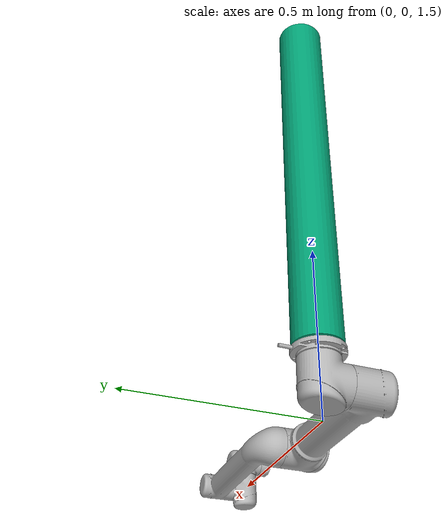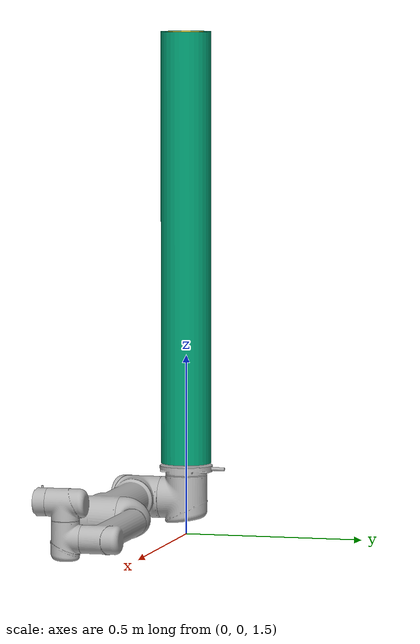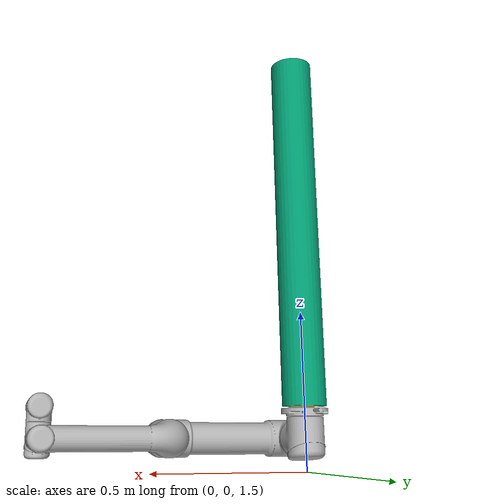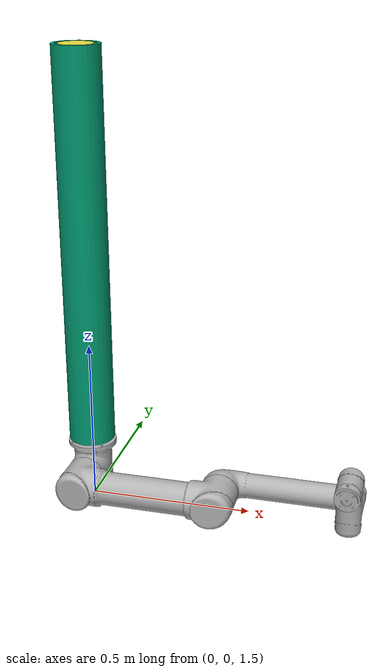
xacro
<?xml version="1.0"?>
<robot xmlns:xacro="http://wiki.ros.org/xacro"
       name="ur5" >

  <xacro:arg name="transmission_hw_interface" default="hardware_interface/PositionJointInterface"/>

  <!-- common stuff -->
  <xacro:include filename="$(find ur_description)/urdf/common.gazebo.xacro" />

  <!-- ur5 -->
  <xacro:include filename="$(find ur_with_cam_gazebo)/urdf/ur5_retractable.urdf.xacro" />

  <!-- arm -->
  <!--xacro:ur5_robot prefix="" joint_limited="false"
    transmission_hw_interface="$(arg transmission_hw_interface)"
  /-->
  <xacro:ur5_robot prefix="" joint_limited="true"
    shoulder_pan_lower_limit="${-pi}" shoulder_pan_upper_limit="${pi}"
    shoulder_lift_lower_limit="${-pi}" shoulder_lift_upper_limit="${pi}"
    elbow_joint_lower_limit="${-pi}" elbow_joint_upper_limit="${pi}"
    wrist_1_lower_limit="${-pi}" wrist_1_upper_limit="${pi}"
    wrist_2_lower_limit="${-pi}" wrist_2_upper_limit="${pi}"
    wrist_3_lower_limit="${-pi}" wrist_3_upper_limit="${pi}"
    transmission_hw_interface="$(arg transmission_hw_interface)"
  />

  <link name='world' />

  <joint name="world_joint" type="fixed">
    <parent link="world" />
    <child link = "base_link" />
    <origin xyz="0.0 0.0 2.9" rpy="${pi} 0.0 0.0" />
  </joint>

</robot>

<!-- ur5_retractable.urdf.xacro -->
<robot xmlns:xacro="http://wiki.ros.org/xacro">

  <xacro:include filename="$(find ur_with_cam_gazebo)/urdf/ur_retractable.transmission.xacro" />

  <xacro:include filename="$(find ur_with_cam_gazebo)/urdf/ur_retractable.gazebo.xacro" />

  <xacro:macro name="cylinder_inertial" params="radius length mass *origin">
    <inertial>
      <mass value="${mass}" />
      <xacro:insert_block name="origin" />
      <inertia ixx="${0.0833333 * mass * (3 * radius * radius + length * length)}" ixy="0.0" ixz="0.0"
        iyy="${0.0833333 * mass * (3 * radius * radius + length * length)}" iyz="0.0"
        izz="${0.5 * mass * radius * radius}" />
    </inertial>
  </xacro:macro>

  <xacro:macro name="ur5_robot" params="prefix joint_limited
    x_move_joint_lower_limit:=-1   x_move_joint_upper_limit:=1
    y_move_joint_lower_limit:=-1   y_move_joint_upper_limit:=1
    z_move_joint_lower_limit:=0   z_move_joint_upper_limit:=1
    shoulder_pan_lower_limit:=${-pi}    shoulder_pan_upper_limit:=${pi}
    shoulder_lift_lower_limit:=${-pi}    shoulder_lift_upper_limit:=${pi}
    elbow_joint_lower_limit:=${-pi}    elbow_joint_upper_limit:=${pi}
    wrist_1_lower_limit:=${-pi}    wrist_1_upper_limit:=${pi}
    wrist_2_lower_limit:=${-pi}    wrist_2_upper_limit:=${pi}
    wrist_3_lower_limit:=${-pi}    wrist_3_upper_limit:=${pi}
    transmission_hw_interface:=hardware_interface/PositionJointInterface
    safety_limits:=false safety_pos_margin:=0.15
    safety_k_position:=20">

    <!-- Inertia parameters -->
    <xacro:property name="base_mass" value="4.0" />  <!-- This mass might be incorrect -->
    <xacro:property name="shoulder_mass" value="3.7000" />
    <xacro:property name="upper_arm_mass" value="8.3930" />
    <xacro:property name="forearm_mass" value="2.2750" />
    <xacro:property name="wrist_1_mass" value="1.2190" />
    <xacro:property name="wrist_2_mass" value="1.2190" />
    <xacro:property name="wrist_3_mass" value="0.1879" />

    <xacro:property name="shoulder_cog" value="0.0 0.00193 -0.02561" />
    <xacro:property name="upper_arm_cog" value="0.0 -0.024201 0.2125" />
    <xacro:property name="forearm_cog" value="0.0 0.0265 0.11993" />
    <xacro:property name="wrist_1_cog" value="0.0 0.110949 0.01634" />
    <xacro:property name="wrist_2_cog" value="0.0 0.0018 0.11099" />
    <xacro:property name="wrist_3_cog" value="0.0 0.001159 0.0" />

    <!-- Kinematic model -->
    <!-- Properties from urcontrol.conf -->
    <xacro:property name="d1" value="0.089159" />
    <xacro:property name="a2" value="-0.42500" />
    <xacro:property name="a3" value="-0.39225" />
    <xacro:property name="d4" value="0.10915" />
    <xacro:property name="d5" value="0.09465" />
    <xacro:property name="d6" value="0.0823" />

    <!-- Arbitrary offsets for shoulder/elbow joints -->
    <xacro:property name="shoulder_offset" value="0.13585" />  <!-- measured from model -->
    <xacro:property name="elbow_offset" value="-0.1197" /> <!-- measured from model -->

    <!-- link lengths used in model -->
    <xacro:property name="shoulder_height" value="${d1}" />
    <xacro:property name="upper_arm_length" value="${-a2}" />
    <xacro:property name="forearm_length" value="${-a3}" />
    <xacro:property name="wrist_1_length" value="${d4 - elbow_offset - shoulder_offset}" />
    <xacro:property name="wrist_2_length" value="${d5}" />
    <xacro:property name="wrist_3_length" value="${d6}" />
    <!--property name="shoulder_height" value="0.089159" /-->
    <!--property name="shoulder_offset" value="0.13585" /-->  <!-- shoulder_offset - elbow_offset + wrist_1_length = 0.10915 -->
    <!--property name="upper_arm_length" value="0.42500" /-->
    <!--property name="elbow_offset" value="0.1197" /-->       <!-- CAD measured -->
    <!--property name="forearm_length" value="0.39225" /-->
    <!--property name="wrist_1_length" value="0.093" /-->     <!-- CAD measured -->
    <!--property name="wrist_2_length" value="0.09465" /-->   <!-- In CAD this distance is 0.930, but in the spec it is 0.09465 -->
    <!--property name="wrist_3_length" value="0.0823" /-->

    <xacro:property name="shoulder_radius" value="0.060" />   <!-- manually measured -->
    <xacro:property name="upper_arm_radius" value="0.054" />  <!-- manually measured -->
    <xacro:property name="elbow_radius" value="0.060" />      <!-- manually measured -->
    <xacro:property name="forearm_radius" value="0.040" />    <!-- manually measured -->
    <xacro:property name="wrist_radius" value="0.045" />      <!-- manually measured -->

    <link name="${prefix}base_link" >
        <xacro:cylinder_inertial radius="0.06" length="0.2" mass="1">
          <origin xyz="0.0 0.0 0.0" rpy="0 0 0" />
        </xacro:cylinder_inertial>
    </link>

    <joint name="${prefix}x_move_joint" type="prismatic">
        <parent link="${prefix}base_link" />
        <child link = "${prefix}move_x_link" />
        <origin xyz="0.0 0.0 0.6" rpy="0.0 0.0 0.0" />
        <axis xyz="1 0 0" />
        <limit lower="-1" upper="1" effort="1000.0" velocity="3.15"/>
        <dynamics damping="0.0" friction="0.0"/>
    </joint>

    <link name="${prefix}move_x_link" >
        <xacro:cylinder_inertial radius="0.06" length="0.2" mass="1">
          <origin xyz="0.0 0.0 0.0" rpy="0 0 0" />
        </xacro:cylinder_inertial>
    </link>

    <joint name="${prefix}y_move_joint" type="prismatic">
        <parent link="${prefix}move_x_link" />
        <child link = "${prefix}move_y_link" />
        <origin xyz="0.0 0.0 0.0" rpy="0.0 0.0 0.0" />
        <axis xyz="0 1 0" />
        <limit lower="-1" upper="1" effort="1000.0" velocity="3.15"/>
        <dynamics damping="0.0" friction="0.0"/>
    </joint>

    <link name="${prefix}move_y_link" >
        <visual>
          <geometry>
            <mesh filename="package://ur_with_cam_gazebo/meshes/retractable_base.dae" />
          </geometry>
        </visual>
        <xacro:cylinder_inertial radius="0.15" length="1.2" mass="1">
          <origin xyz="0.0 0.0 0.0" rpy="0 0 0" />
        </xacro:cylinder_inertial>
    </link>

    <joint name="${prefix}z_move_joint" type="prismatic">
        <parent link="${prefix}move_y_link" />
        <child link = "${prefix}move_z_link" />
        <origin xyz="0.0 0.0 0.0" rpy="0.0 0.0 0.0" />
        <axis xyz="0 0 1" />
        <limit lower="0" upper="1.2" effort="1000.0" velocity="3.15"/>
        <dynamics damping="0.0" friction="0.0"/>
    </joint>

    <link name="${prefix}move_z_link" >
        <visual name='visual'>
          <geometry>
            <cylinder radius="0.05" length="1.2" />
          </geometry>
        </visual>
        <xacro:cylinder_inertial radius="0.05" length="1.2" mass="1">
          <origin xyz="0.0 0.0 0.0" rpy="0 0 0" />
        </xacro:cylinder_inertial>
    </link>

    <joint name="${prefix}fix_arm_base_joint" type="fixed">
      <parent link="${prefix}move_z_link" />
      <child link = "${prefix}arm_base_link" />
      <origin xyz="0.0 0.0 0.61" rpy="0.0 0.0 0.0" />
    </joint>

    <link name="${prefix}arm_base_link" >
      <visual>
        <geometry>
          <mesh filename="package://ur_description/meshes/ur5/visual/base.dae" />
        </geometry>
        <material name="LightGrey">
          <color rgba="0.7 0.7 0.7 1.0"/>
        </material>
      </visual>
      <collision>
        <geometry>
          <mesh filename="package://ur_description/meshes/ur5/collision/base.stl" />
        </geometry>
      </collision>
      <xacro:cylinder_inertial radius="0.06" length="0.05" mass="${base_mass}">
        <origin xyz="0.0 0.0 0.0" rpy="0 0 0" />
      </xacro:cylinder_inertial>
    </link>

    <joint name="${prefix}shoulder_pan_joint" type="revolute">
      <parent link="${prefix}arm_base_link" />
      <child link = "${prefix}shoulder_link" />
      <origin xyz="0.0 0.0 ${shoulder_height}" rpy="0.0 0.0 0.0" />
      <axis xyz="0 0 1" />
      <xacro:unless value="${joint_limited}">
        <limit lower="${-2.0 * pi}" upper="${2.0 * pi}" effort="150.0" velocity="3.15"/>
        <xacro:if value="${safety_limits}">
          <safety_controller soft_lower_limit="${-2.0 * pi + safety_pos_margin}" soft_upper_limit="${2.0 * pi - safety_pos_margin}" k_position="${safety_k_position}" k_velocity="0.0"/>
        </xacro:if>
      </xacro:unless>
      <xacro:if value="${joint_limited}">
        <limit lower="${shoulder_pan_lower_limit}" upper="${shoulder_pan_upper_limit}" effort="150.0" velocity="3.15"/>
        <xacro:if value="${safety_limits}">
          <safety_controller soft_lower_limit="${shoulder_pan_lower_limit + safety_pos_margin}" soft_upper_limit="${shoulder_pan_upper_limit - safety_pos_margin}" k_position="${safety_k_position}" k_velocity="0.0"/>
        </xacro:if>
      </xacro:if>
      <dynamics damping="0.0" friction="0.0"/>
    </joint>

    <link name="${prefix}shoulder_link">
      <visual>
        <geometry>
          <mesh filename="package://ur_description/meshes/ur5/visual/shoulder.dae" />
        </geometry>
        <material name="LightGrey">
          <color rgba="0.7 0.7 0.7 1.0"/>
        </material>
      </visual>
      <collision>
        <geometry>
          <mesh filename="package://ur_description/meshes/ur5/collision/shoulder.stl" />
        </geometry>
      </collision>
      <xacro:cylinder_inertial radius="0.06" length="0.15" mass="${shoulder_mass}">
        <origin xyz="0.0 0.0 0.0" rpy="0 0 0" />
      </xacro:cylinder_inertial>
    </link>

    <joint name="${prefix}shoulder_lift_joint" type="revolute">
      <parent link="${prefix}shoulder_link" />
      <child link = "${prefix}upper_arm_link" />
      <origin xyz="0.0 ${shoulder_offset} 0.0" rpy="0.0 ${pi / 2.0} 0.0" />
      <axis xyz="0 1 0" />
      <xacro:unless value="${joint_limited}">
        <limit lower="${-2.0 * pi}" upper="${2.0 * pi}" effort="150.0" velocity="3.15"/>
        <xacro:if value="${safety_limits}">
          <safety_controller soft_lower_limit="${-2.0 * pi + safety_pos_margin}" soft_upper_limit="${2.0 * pi - safety_pos_margin}" k_position="${safety_k_position}" k_velocity="0.0"/>
        </xacro:if>
      </xacro:unless>
      <xacro:if value="${joint_limited}">
        <limit lower="${shoulder_lift_lower_limit}" upper="${shoulder_lift_upper_limit}" effort="150.0" velocity="3.15"/>
        <xacro:if value="${safety_limits}">
          <safety_controller soft_lower_limit="${shoulder_lift_lower_limit + safety_pos_margin}" soft_upper_limit="${shoulder_lift_upper_limit - safety_pos_margin}" k_position="${safety_k_position}" k_velocity="0.0"/>
        </xacro:if>
      </xacro:if>
      <dynamics damping="0.0" friction="0.0"/>
    </joint>

    <link name="${prefix}upper_arm_link">
      <visual>
        <geometry>
          <mesh filename="package://ur_description/meshes/ur5/visual/upperarm.dae" />
        </geometry>
        <material name="LightGrey">
          <color rgba="0.7 0.7 0.7 1.0"/>
        </material>
      </visual>
      <collision>
        <geometry>
          <mesh filename="package://ur_description/meshes/ur5/collision/upperarm.stl" />
        </geometry>
      </collision>
      <xacro:cylinder_inertial radius="0.06" length="0.56" mass="${upper_arm_mass}">
        <origin xyz="0.0 0.0 0.28" rpy="0 0 0" />
      </xacro:cylinder_inertial>
    </link>

    <joint name="${prefix}elbow_joint" type="revolute">
      <parent link="${prefix}upper_arm_link" />
      <child link = "${prefix}forearm_link" />
      <origin xyz="0.0 ${elbow_offset} ${upper_arm_length}" rpy="0.0 0.0 0.0" />
      <axis xyz="0 1 0" />
      <xacro:unless value="${joint_limited}">
        <limit lower="${-pi}" upper="${pi}" effort="150.0" velocity="3.15"/>
        <xacro:if value="${safety_limits}">
          <safety_controller soft_lower_limit="${-2.0 * pi + safety_pos_margin}" soft_upper_limit="${2.0 * pi - safety_pos_margin}" k_position="${safety_k_position}" k_velocity="0.0"/>
        </xacro:if>
      </xacro:unless>
      <xacro:if value="${joint_limited}">
        <limit lower="${elbow_joint_lower_limit}" upper="${elbow_joint_upper_limit}" effort="150.0" velocity="3.15"/>
        <xacro:if value="${safety_limits}">
          <safety_controller soft_lower_limit="${elbow_joint_lower_limit + safety_pos_margin}" soft_upper_limit="${elbow_joint_upper_limit - safety_pos_margin}" k_position="${safety_k_position}" k_velocity="0.0"/>
        </xacro:if>
      </xacro:if>
      <dynamics damping="0.0" friction="0.0"/>
    </joint>

    <link name="${prefix}forearm_link">
      <visual>
        <geometry>
          <mesh filename="package://ur_description/meshes/ur5/visual/forearm.dae" />
        </geometry>
        <material name="LightGrey">
          <color rgba="0.7 0.7 0.7 1.0"/>
        </material>
      </visual>
      <collision>
        <geometry>
          <mesh filename="package://ur_description/meshes/ur5/collision/forearm.stl" />
        </geometry>
      </collision>
      <xacro:cylinder_inertial radius="0.06" length="${-a3}" mass="${forearm_mass}">
        <origin xyz="0.0 0.0 ${-a3/2}" rpy="0 0 0" />
      </xacro:cylinder_inertial>
    </link>

    <joint name="${prefix}wrist_1_joint" type="revolute">
      <parent link="${prefix}forearm_link" />
      <child link = "${prefix}wrist_1_link" />
      <origin xyz="0.0 0.0 ${forearm_length}" rpy="0.0 ${pi / 2.0} 0.0" />
      <axis xyz="0 1 0" />
      <xacro:unless value="${joint_limited}">
        <limit lower="${-2.0 * pi}" upper="${2.0 * pi}" effort="28.0" velocity="3.2"/>
        <xacro:if value="${safety_limits}">
          <safety_controller soft_lower_limit="${-2.0 * pi + safety_pos_margin}" soft_upper_limit="${2.0 * pi - safety_pos_margin}" k_position="${safety_k_position}" k_velocity="0.0"/>
        </xacro:if>
      </xacro:unless>
      <xacro:if value="${joint_limited}">
        <limit lower="${wrist_1_lower_limit}" upper="${wrist_1_upper_limit}" effort="28.0" velocity="3.2"/>
        <xacro:if value="${safety_limits}">
          <safety_controller soft_lower_limit="${wrist_1_lower_limit + safety_pos_margin}" soft_upper_limit="${wrist_1_upper_limit - safety_pos_margin}" k_position="${safety_k_position}" k_velocity="0.0"/>
        </xacro:if>
      </xacro:if>
      <dynamics damping="0.0" friction="0.0"/>
    </joint>

    <link name="${prefix}wrist_1_link">
      <visual>
        <geometry>
          <mesh filename="package://ur_description/meshes/ur5/visual/wrist1.dae" />
        </geometry>
        <material name="LightGrey">
          <color rgba="0.7 0.7 0.7 1.0"/>
        </material>
      </visual>
      <collision>
        <geometry>
          <mesh filename="package://ur_description/meshes/ur5/collision/wrist1.stl" />
        </geometry>
      </collision>
      <xacro:cylinder_inertial radius="0.06" length="0.12" mass="${wrist_1_mass}">
        <origin xyz="0.0 ${wrist_1_length} 0.0" rpy="0 0 0" />
      </xacro:cylinder_inertial>
    </link>

    <joint name="${prefix}wrist_2_joint" type="revolute">
      <parent link="${prefix}wrist_1_link" />
      <child link = "${prefix}wrist_2_link" />
      <origin xyz="0.0 ${wrist_1_length} 0.0" rpy="0.0 0.0 0.0" />
      <axis xyz="0 0 1" />
      <xacro:unless value="${joint_limited}">
        <limit lower="${-2.0 * pi}" upper="${2.0 * pi}" effort="28.0" velocity="3.2"/>
        <xacro:if value="${safety_limits}">
          <safety_controller soft_lower_limit="${-2.0 * pi + safety_pos_margin}" soft_upper_limit="${2.0 * pi - safety_pos_margin}" k_position="${safety_k_position}" k_velocity="0.0"/>
        </xacro:if>
      </xacro:unless>
      <xacro:if value="${joint_limited}">
        <limit lower="${wrist_2_lower_limit}" upper="${wrist_2_upper_limit}" effort="28.0" velocity="3.2"/>
        <xacro:if value="${safety_limits}">
          <safety_controller soft_lower_limit="${wrist_2_lower_limit + safety_pos_margin}" soft_upper_limit="${wrist_2_upper_limit - safety_pos_margin}" k_position="${safety_k_position}" k_velocity="0.0"/>
        </xacro:if>
      </xacro:if>
      <dynamics damping="0.0" friction="0.0"/>
    </joint>

    <link name="${prefix}wrist_2_link">
      <visual>
        <geometry>
          <mesh filename="package://ur_description/meshes/ur5/visual/wrist2.dae" />
        </geometry>
        <material name="LightGrey">
          <color rgba="0.7 0.7 0.7 1.0"/>
        </material>
      </visual>
      <collision>
        <geometry>
          <mesh filename="package://ur_description/meshes/ur5/collision/wrist2.stl" />
        </geometry>
      </collision>
      <xacro:cylinder_inertial radius="0.06" length="0.12" mass="${wrist_2_mass}">
        <origin xyz="0.0 0.0 ${wrist_2_length}" rpy="0 0 0" />
      </xacro:cylinder_inertial>
    </link>

    <joint name="${prefix}wrist_3_joint" type="revolute">
      <parent link="${prefix}wrist_2_link" />
      <child link = "${prefix}wrist_3_link" />
      <origin xyz="0.0 0.0 ${wrist_2_length}" rpy="0.0 0.0 0.0" />
      <axis xyz="0 1 0" />
      <xacro:unless value="${joint_limited}">
        <limit lower="${-2.0 * pi}" upper="${2.0 * pi}" effort="28.0" velocity="3.2"/>
        <xacro:if value="${safety_limits}">
          <safety_controller soft_lower_limit="${-2.0 * pi + safety_pos_margin}" soft_upper_limit="${2.0 * pi - safety_pos_margin}" k_position="${safety_k_position}" k_velocity="0.0"/>
        </xacro:if>
      </xacro:unless>
      <xacro:if value="${joint_limited}">
        <limit lower="${wrist_3_lower_limit}" upper="${wrist_3_upper_limit}" effort="28.0" velocity="3.2"/>
        <xacro:if value="${safety_limits}">
          <safety_controller soft_lower_limit="${wrist_3_lower_limit + safety_pos_margin}" soft_upper_limit="${wrist_3_upper_limit - safety_pos_margin}" k_position="${safety_k_position}" k_velocity="0.0"/>
        </xacro:if>
      </xacro:if>
      <dynamics damping="0.0" friction="0.0"/>
    </joint>

    <link name="${prefix}wrist_3_link">
      <visual>
        <geometry>
          <mesh filename="package://ur_description/meshes/ur5/visual/wrist3.dae" />
        </geometry>
        <material name="LightGrey">
          <color rgba="0.7 0.7 0.7 1.0"/>
        </material>
      </visual>
      <collision>
        <geometry>
          <mesh filename="package://ur_description/meshes/ur5/collision/wrist3.stl" />
        </geometry>
      </collision>
      <xacro:cylinder_inertial radius="0.0375" length="0.0345" mass="${wrist_3_mass}">
        <origin xyz="0.0 ${wrist_3_length - 0.0345/2} 0.0" rpy="${pi/2} 0 0" />
      </xacro:cylinder_inertial>
    </link>

    <joint name="${prefix}ee_fixed_joint" type="fixed">
      <parent link="${prefix}wrist_3_link" />
      <child link = "${prefix}ee_link" />
      <origin xyz="0.0 ${wrist_3_length} 0.0" rpy="0.0 0.0 ${pi/2.0}" />
    </joint>

    <link name="${prefix}ee_link">
      <collision>
        <geometry>
          <box size="0.01 0.01 0.01"/>
        </geometry>
        <origin rpy="0 0 0" xyz="-0.01 0 0"/>
      </collision>
    </link>

    <xacro:ur_arm_transmission prefix="${prefix}" hw_interface="${transmission_hw_interface}" />
    <xacro:ur_arm_gazebo prefix="${prefix}" />

    <!-- ROS base_link to UR 'Base' Coordinates transform -->
    <link name="${prefix}base"/>
    <joint name="${prefix}base_link-base_fixed_joint" type="fixed">
      <!-- NOTE: this rotation is only needed as long as base_link itself is
                 not corrected wrt the real robot (ie: rotated over 180
                 degrees)
      -->
      <origin xyz="0 0 0" rpy="0 0 ${-pi}"/>
      <parent link="${prefix}base_link"/>
      <child link="${prefix}base"/>
    </joint>

    <!-- Frame coincident with all-zeros TCP on UR controller -->
    <link name="${prefix}tool0"/>
    <joint name="${prefix}wrist_3_link-tool0_fixed_joint" type="fixed">
      <origin xyz="0 ${wrist_3_length} 0" rpy="${pi/-2.0} 0 0"/>
      <parent link="${prefix}wrist_3_link"/>
      <child link="${prefix}tool0"/>
    </joint>

    <link name="${prefix}camera_link"/>
    <joint name="${prefix}tool0_camera-link_fixed_joint" type="fixed">
      <origin xyz="0 0 0.02" rpy="0 ${pi/-2.0} ${pi/-2.0}"/>
      <parent link="${prefix}tool0"/>
      <child link="${prefix}camera_link"/>
    </joint>

    <link name="${prefix}camera_depth_frame"/>

    <joint name="${prefix}camera-link_camera-depth_fixed_joint" type="fixed">
      <origin xyz="0 0 0" rpy="${pi/-2.0} 0 ${pi/-2.0}"/>
      <parent link="${prefix}camera_link"/>
      <child link="${prefix}camera_depth_frame"/>
    </joint>

    <gazebo reference="${prefix}camera_link">
      <sensor name="${prefix}camera" type="depth">
        <update_rate>20</update_rate>
        <camera>
          <horizontal_fov>${80*pi/180}</horizontal_fov>
          <image>
            <width>640</width>
            <height>480</height>
            <format>B8G8R8</format>
          </image>
          <clip>
            <near>0.15</near>
            <far>3.0</far>
          </clip>
        </camera>
        <plugin name="${prefix}camera_controller" filename="libgazebo_ros_openni_kinect.so">
          <baseline>0.05</baseline>
          <alwaysOn>true</alwaysOn>
          <updateRate>1.0</updateRate>
          <cameraName>${prefix}camera</cameraName>
          <imageTopicName>/${prefix}camera/color/image_raw</imageTopicName>
          <cameraInfoTopicName>/${prefix}camera/color/camera_info</cameraInfoTopicName>
          <depthImageTopicName>/${prefix}camera/depth/image_raw</depthImageTopicName>
          <depthImageCameraInfoTopicName>/${prefix}camera/depth/camera_info</depthImageCameraInfoTopicName>
          <pointCloudTopicName>/${prefix}camera/depth/points</pointCloudTopicName>
          <frameName>${prefix}camera_depth_frame</frameName>
          <pointCloudCutoff>0.15</pointCloudCutoff>
          <pointCloudCutoffMax>3.0</pointCloudCutoffMax>
          <distortionK1>0.0</distortionK1>
          <distortionK2>0.0</distortionK2>
          <distortionK3>0.0</distortionK3>
          <distortionT1>0.0</distortionT1>
          <distortionT2>0.0</distortionT2>
          <CxPrime>0</CxPrime>
          <Cx>0</Cx>
          <Cy>0</Cy>
          <focalLength>0</focalLength>
          <hackBaseline>0</hackBaseline>
        </plugin>
      </sensor>
    </gazebo>

  </xacro:macro>
</robot>
